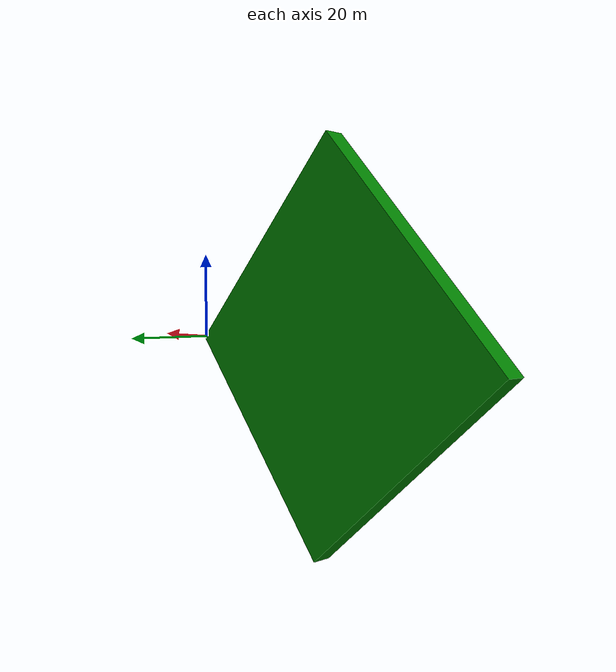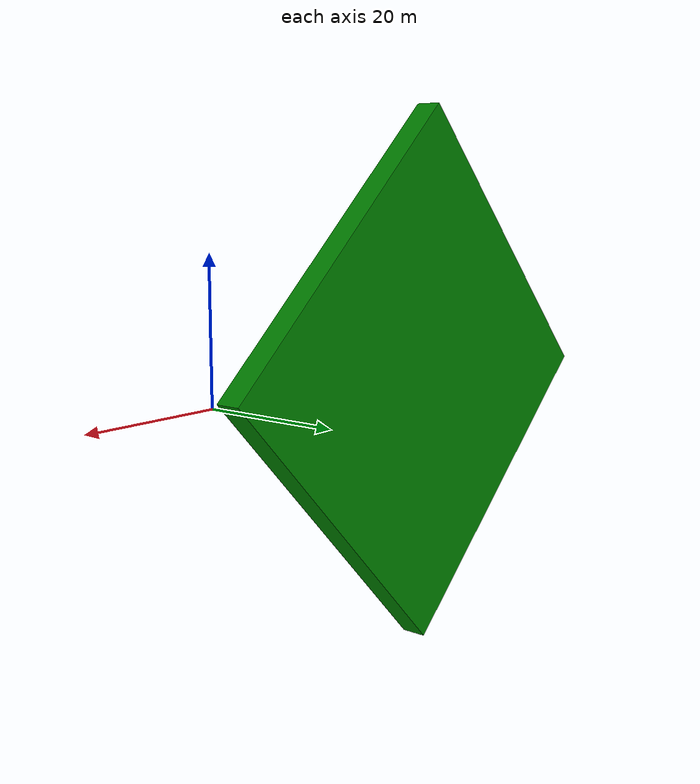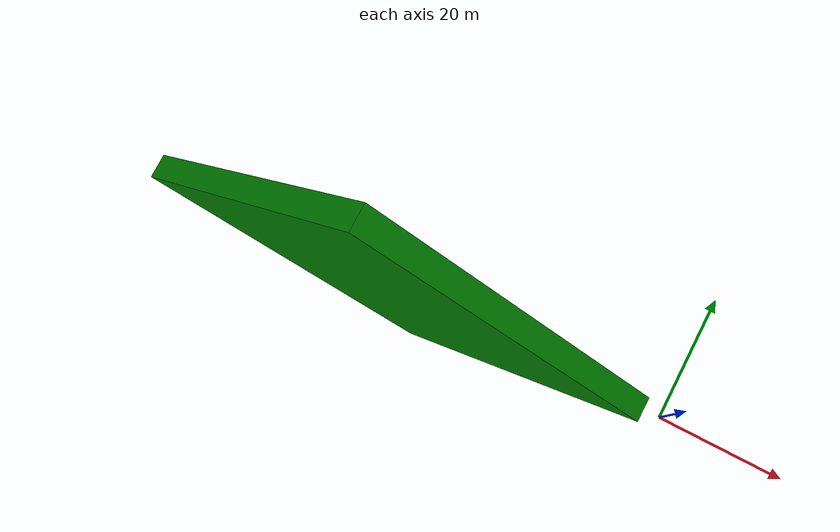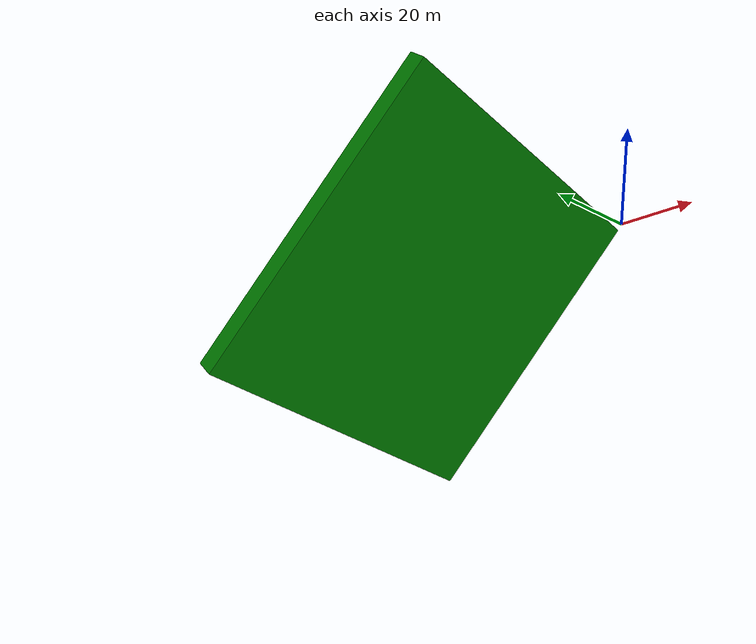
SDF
<?xml version="1.0" ?>
<sdf version="1.6">
  <model name="30m_43d_slope">
    <static>true</static>
    <link name="slope">
      <collision name="collision">
        <pose>0 0 0 0 0 0</pose>
        <geometry>
          <mesh>
            <uri>model://30m_43d_slope/meshes/slope.stl</uri>
          </mesh>
        </geometry>
        <surface>
          <friction>
            <ode>
              <mu>1.0</mu>
              <mu2>1.0</mu2>
            </ode>
          </friction>
          <contact>
            <ode>
              <kp>10000000.0</kp>
              <kd>1.0</kd>
              <min_depth>0.001</min_depth>
              <max_vel>0.1</max_vel>
            </ode>
          </contact>
        </surface>
      </collision>
      <visual name="visual">
        <cast_shadows>false</cast_shadows>
        <pose>0 0 0 0 0 0</pose>
        <geometry>
          <mesh>
            <uri>model://30m_43d_slope/meshes/slope.stl</uri>
          </mesh>
        </geometry>
        <material>
          <ambient>0 0.5 0 1</ambient>
          <diffuse>0 0.5 0 1</diffuse>
          <specular>0.1 0.1 0.1 1</specular>
          <emissive>0 0 0 0</emissive>
        </material>
      </visual>
    </link>
  </model>
</sdf>
